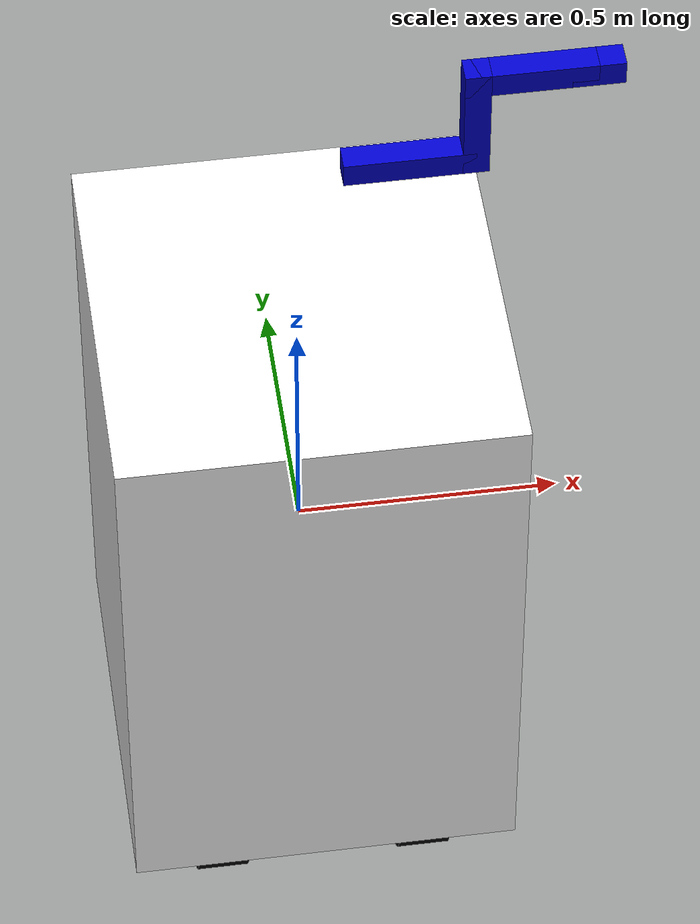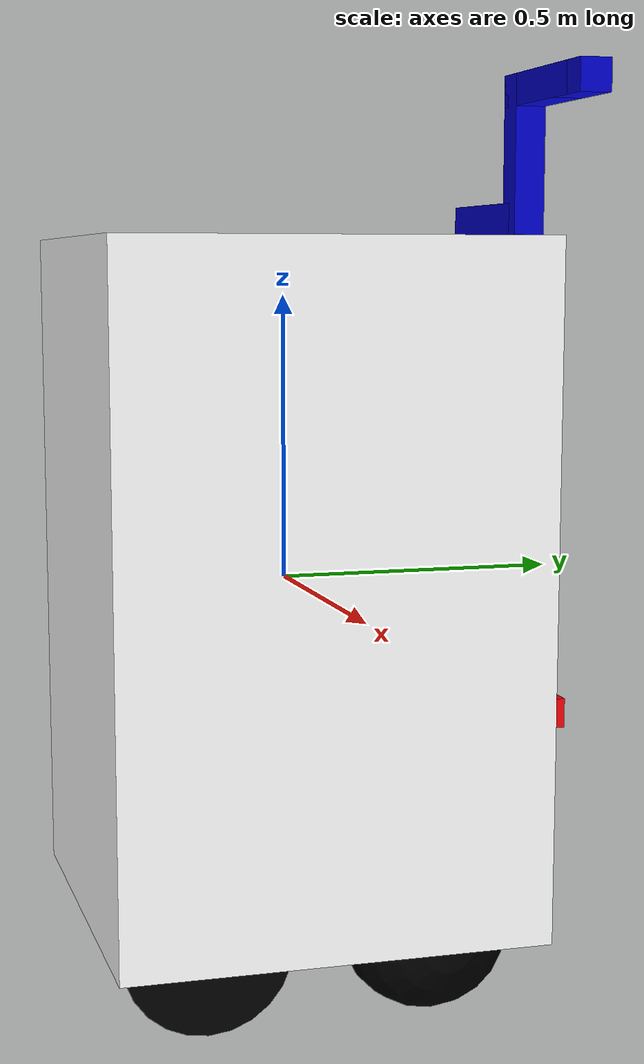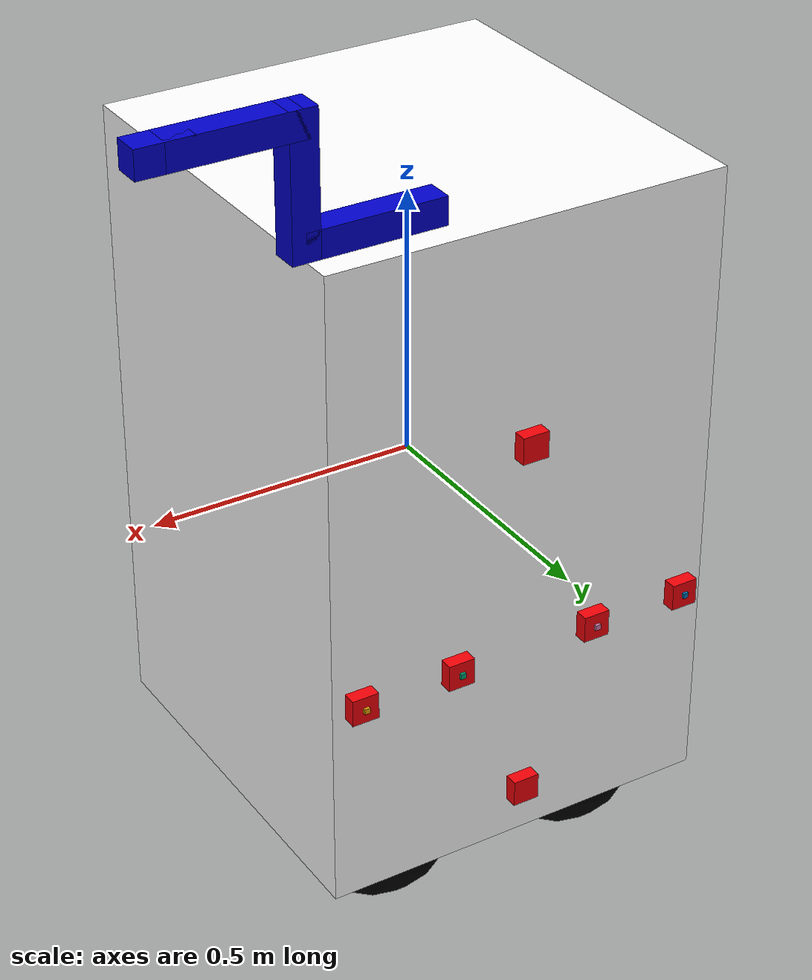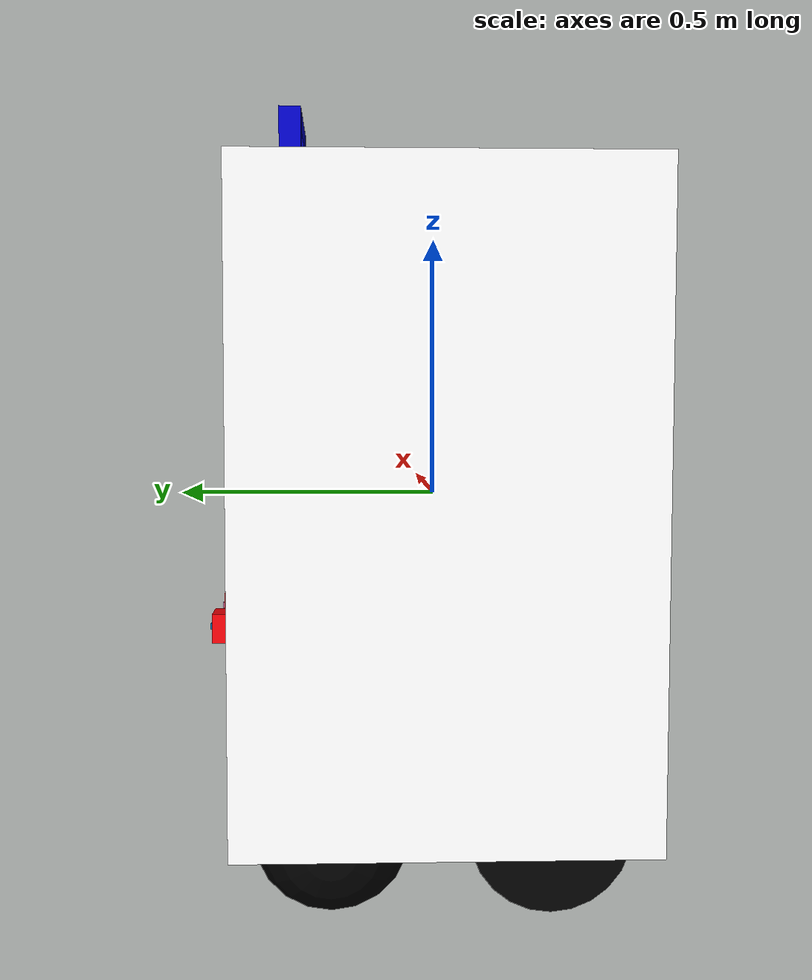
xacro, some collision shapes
<?xml version="1.0"?>
<robot name="poseidon"
    xmlns:xacro="http://ros.org/wiki/xacro">

    <!-- Material description for the robot -->
    <material name="black">
        <color rgba="0.0 0.0 0.0 1.0"/>
    </material>

    <material name="blue">
        <color rgba="0.0 0.0 0.8 1.0"/>
    </material>

    <material name="red">
        <color rgba="0.949, 0.007, 0.031, 1.0"/>
    </material>

    <material name="white">
        <color rgba="1.0 1.0 1.0 1.0"/>
    </material>

    <!-- Description for the robot base -->
    <xacro:property name="base_width" value="0.75" />
    <xacro:property name="base_depth" value="0.75" />
    <xacro:property name="base_height" value="1.2" />
    <xacro:property name="base_width_sqrd" value="${base_width*base_width}" />
    <xacro:property name="base_depth_sqrd" value="${base_depth*base_depth}" />
    <xacro:property name="base_height_sqrd" value="${base_height*base_height}" />

    <!-- Description for sensors -->
    <xacro:property name="camera_length" value="0.05" />
    <xacro:property name="imu_length" value="0.05" />
    <xacro:property name="sonar_sensor_length" value="0.05" />

    <!-- Description for the arm -->
    <xacro:property name="arm_generic_width" value="0.05" />
    <xacro:property name="arm_generic_depth" value="0.25" />
    <xacro:property name="arm_generic_height" value="0.05" />
    <xacro:property name="arm_end_width" value="0.05" />
    <xacro:property name="arm_end_depth" value="0.1" />
    <xacro:property name="arm_end_height" value="0.05" />
    <xacro:property name="arm_generic_width_sqrd" value="${arm_generic_width*arm_generic_width}" />
    <xacro:property name="arm_generic_depth_sqrd" value="${arm_generic_depth*arm_generic_depth}" />
    <xacro:property name="arm_generic_height_sqrd" value="${arm_generic_height*arm_generic_height}" />
    <xacro:property name="arm_end_width_sqrd" value="${arm_end_width*arm_end_width}" />
    <xacro:property name="arm_end_depth_sqrd" value="${arm_end_depth*arm_end_depth}" />
    <xacro:property name="arm_end_height_sqrd" value="${arm_end_height*arm_end_height}" />
    <xacro:property name="arm_generic_mass" value="0.1" />
    <xacro:property name="arm_end_mass" value="0.05" />

    <!-- Description for the wheel -->
    <xacro:property name="pi" value="3.1415" />
    <xacro:property name="wheel_radius" value="0.15" />
    <xacro:property name="wheel_length" value="0.1" />
    <xacro:property name="wheel_radius_sqrd" value="${wheel_radius*wheel_radius}" />
    <xacro:property name="wheel_length_sqrd" value="${wheel_length*wheel_length}" />
    <xacro:property name="wheel_front" value="0.2" />
    <xacro:property name="wheel_back" value="-0.2" />
    <xacro:property name="wheel_right" value="0.2" />
    <xacro:property name="wheel_left" value="-0.2" />
    <xacro:property name="wheel_mass" value="7" />

    <!-- Inertial macro description -->
    <xacro:macro name="cuboid_inertial" params="mass depth_sqrd width_sqrd height_sqrd">
        <inertial>
            <mass value="${mass}"/>
            <inertia ixx="${0.0833*mass*(width_sqrd+height_sqrd)}" ixy="0.0" ixz="0.0" iyy="${0.0833*mass*(depth_sqrd+height_sqrd)}" iyz="0.0" izz="${0.0833*mass*(width_sqrd+depth_sqrd)}" />
        </inertial>
    </xacro:macro>
    <xacro:macro name="cylinder_inertial" params="mass radius_sqrd length_sqrd">
        <inertial>
            <mass value="${mass}"/>
            <inertia ixx="${0.0833*mass*(3*radius_sqrd+length_sqrd)}" ixy="0.0" ixz="0.0" iyy="${0.0833*mass*(3*radius_sqrd+length_sqrd)}" iyz="0.0" izz="${0.5*mass*radius_sqrd}" />
        </inertial>
    </xacro:macro>
    <xacro:macro name="sphere_inertial" params="mass radius_sqrd">
        <inertial>
            <mass value="${mass}"/>
            <inertia ixx="${0.4*mass*radius_sqrd}" ixy="0.0" ixz="0.0" iyy="${0.4*mass*radius_sqrd}" iyz="0.0" izz="${0.4*mass*radius_sqrd}" />
        </inertial>
    </xacro:macro>

    <!-- Camera sensor macro description -->
    <xacro:macro name="camera_sensor" params="suffix origin_depth origin_width origin_height axis_x axis_y axis_z roll pitch yaw">
        <link name="camera_${suffix}_link">
            <inertial>
                <origin xyz="0.0 0.0 0.0" rpy="0.0 0.0 0.0"/>
                <mass value="1e-5"/>
                <inertia ixx="1e-6" ixy="0.0" ixz="0.0" iyy="1e-6" iyz="0.0" izz="1e-6"/>
            </inertial>
            <visual>
                <origin xyz="0.0 0.0 0.0" rpy="0.0 0.0 0.0"/>
                <geometry>
                    <box size="${camera_length} ${camera_length} ${camera_length}"/>
                </geometry>
                <material name="red"/>
            </visual>
            <collision>
                <origin xyz="0.0 0.0 0.0" rpy="0.0 0.0 0.0"/>
                <geometry>
                    <box size="${camera_length} ${camera_length} ${camera_length}"/>
                </geometry>
            </collision>
        </link>

        <joint name="camera_${suffix}_joint" type="fixed">
            <origin xyz="${origin_depth} ${origin_width} ${origin_height}" rpy="${roll} ${pitch} ${yaw}"/>
            <parent link="base_link"/>
            <child link="camera_${suffix}_link"/>
            <axis xyz="${axis_x} ${axis_y} ${axis_z}"/>
        </joint>
    </xacro:macro>

    <!-- Sonar sensor macro description -->
    <xacro:macro name="sonar_base_link" params="suffix origin_depth origin_width origin_height axis_x axis_y axis_z roll pitch yaw">
        <link name="sonar_base_${suffix}_link">
            <inertial>
                <origin xyz="0.0 0.0 0.0" rpy="0.0 0.0 0.0"/>
                <mass value="1e-5"/>
                <inertia ixx="1e-6" ixy="0.0" ixz="0.0" iyy="1e-6" iyz="0.0" izz="1e-6"/>
            </inertial>
            <visual>
                <origin xyz="0.0 0.0 0.0" rpy="0.0 0.0 0.0"/>
                <geometry>
                    <box size="${sonar_sensor_length} ${sonar_sensor_length} ${sonar_sensor_length}"/>
                </geometry>
                <material name="red"/>
            </visual>
            <collision>
                <origin xyz="0.0 0.0 0.0" rpy="0.0 0.0 0.0"/>
                <geometry>
                    <box size="${sonar_sensor_length} ${sonar_sensor_length} ${sonar_sensor_length}"/>
                </geometry>
            </collision>
        </link>

        <joint name="sonar_base_${suffix}_joint" type="fixed">
            <origin xyz="${origin_depth} ${origin_width} ${origin_height}" rpy="${roll} ${pitch} ${yaw}"/>
            <parent link="base_link"/>
            <child link="sonar_base_${suffix}_link"/>
            <axis xyz="${axis_x} ${axis_y} ${axis_z}"/>
        </joint>
    </xacro:macro>

    <!-- Hector sonar sensor -->
    <xacro:macro name="sonar_sensor" params="name parent *origin ros_topic update_rate min_range max_range field_of_view ray_count">
        <joint name="${name}_joint" type="fixed">
            <xacro:insert_block name="origin" />
            <parent link="${parent}"/>
            <child link="${name}_link"/>
        </joint>

        <link name="${name}_link">
            <inertial>
                <mass value="0.001" />
                <origin xyz="0 0 0" rpy="0 0 0" />
                <inertia ixx="0.000000017" ixy="0" ixz="0" iyy="0.000000017" iyz="0" izz="0.000000017" />
            </inertial>
            <visual>
                <origin xyz="0 0 0" rpy="0 0 0" />
                <geometry>
                    <mesh filename="package://hector_sensors_description/meshes/sonar_sensor/max_sonar_ez4.dae"/>
                </geometry>
            </visual>
            <collision>
                <origin xyz="0 0 0" rpy="0 0 0" />
                <geometry>
                    <box size="0.01 0.01 0.01" />
                </geometry>
            </collision>
        </link>

        <gazebo reference="${name}_link">
            <sensor type="ray" name="${name}">
                <always_on>true</always_on>
                <update_rate>${update_rate}</update_rate>
                <pose>0 0 0 0 0 0</pose>
                <visualize>false</visualize>
                <ray>
                    <scan>
                        <horizontal>
                            <samples>${ray_count}</samples>
                            <resolution>1</resolution>
                            <min_angle>-${field_of_view/2}</min_angle>
                            <max_angle> ${field_of_view/2}</max_angle>
                        </horizontal>
                        <vertical>
                            <samples>${ray_count}</samples>
                            <resolution>1</resolution>
                            <min_angle>-${field_of_view/2}</min_angle>
                            <max_angle> ${field_of_view/2}</max_angle>
                        </vertical>
                    </scan>
                    <range>
                        <min>${min_range}</min>
                        <max>${max_range}</max>
                        <resolution>0.01</resolution>
                    </range>
                </ray>

                <plugin name="gazebo_ros_${name}_controller" filename="libhector_gazebo_ros_sonar.so">
                    <gaussianNoise>0.005</gaussianNoise>
                    <topicName>${ros_topic}</topicName>
                    <frameId>${name}_link</frameId>
                </plugin>
            </sensor>
        </gazebo>
    </xacro:macro>

    <!-- Robot wheel macro description -->
    <xacro:macro name="wheel_motor" params="prefix end side">
        <link name="${prefix}_wheel_motor">
            <xacro:cylinder_inertial mass="${wheel_mass}" radius_sqrd="${wheel_radius_sqrd}" length_sqrd="${wheel_length_sqrd}"/>
            <visual>
                <geometry>
                    <cylinder length="${wheel_length}" radius="${wheel_radius}"/>
                </geometry>
                <material name="black"/>
                <origin xyz="0 0 0" rpy="0.0 ${pi/2} 0.0"/>
            </visual>
            <collision>
                <geometry>
                    <cylinder length="${wheel_length}" radius="${wheel_radius}"/>
                </geometry>
                <origin xyz="0 0 0" rpy="0.0 ${pi/2} 0.0"/>
            </collision>
        </link>

        <joint name="${prefix}_wheel_motor_joint" type="continuous">
            <parent link="base_link"/>
            <child link="${prefix}_wheel_motor"/>
            <origin xyz="${side} ${end} -0.6"/>
            <axis xyz="-1.0 0.0 0.0"/>
        </joint>

        <transmission name="${prefix}_wheel_motor_trans">
            <type>transmission_interface/SimpleTransmission</type>
            <actuator name="${prefix}_wheel_actuator">
                <mechanicalReduction>1</mechanicalReduction>
            </actuator>
            <joint name="${prefix}_wheel_motor_joint">
                <hardwareInterface>VelocityJointInterface</hardwareInterface>
            </joint>
        </transmission>

        <gazebo reference="${prefix}_wheel_motor">
            <mu1 value="200"/>
            <mu2 value="100"/>
            <kp value="10000000.0"/>
            <kd value="1.0"/>
            <material>Gazebo/Grey</material>
        </gazebo>
    </xacro:macro>

    <xacro:macro name="wheel_caster" params="prefix end side">
        <link name="${prefix}_wheel_caster">
            <xacro:sphere_inertial mass="${wheel_mass}" radius_sqrd="${wheel_radius_sqrd}"/>
            <visual>
                <origin xyz="0 0 0" rpy="0.0 ${pi/2} 0.0"/>
                <geometry>
                    <sphere radius="${wheel_radius}"/>
                </geometry>
                <material name="black"/>
            </visual>
            <collision>
                <origin xyz="0 0 0" rpy="0.0 ${pi/2} 0.0"/>
                <geometry>
                    <sphere radius="${wheel_radius}"/>
                </geometry>
            </collision>
        </link>

        <joint name="${prefix}_wheel_caster_joint" type="fixed">
            <parent link="base_link"/>
            <child link="${prefix}_wheel_caster"/>
            <origin xyz="${side} ${end} -0.6"/>
        </joint>

        <gazebo reference="${prefix}_wheel_caster">
            <mu1 value="0.0"/>
            <mu2 value="0.0"/>
            <kp value="10000000.0"/>
            <kd value="1.0"/>
            <material>Gazebo/White</material>
        </gazebo>
    </xacro:macro>

    <!-- Link description for the robot base -->
    <link name="base_link">
        <inertial>
            <mass value="400"/>
            <inertia ixx="66.75" ixy="0.0" ixz="0.0" iyy="37.5" iyz="0.0" izz="66.75"/>
        </inertial>
        <visual>
            <geometry>
                <box size="${base_depth} ${base_width} ${base_height}"/>
            </geometry>
            <material name="white"/>
        </visual>
        <collision>
            <geometry>
                <box size="${base_depth} ${base_width} ${base_height}"/>
            </geometry>
        </collision>
    </link>

    <!-- Sensor description attached to the robot base -->
    <!-- Camera Sensors -->
    <xacro:camera_sensor suffix="centre" origin_depth="0.0" origin_width="${base_width/2}" origin_height="0.2" axis_x="0.0" axis_y="1.0" axis_z="0.0" roll="0.0" pitch="0.0" yaw="0.0" />
    <xacro:camera_sensor suffix="qr" origin_depth="0.0" origin_width="${base_width/2}" origin_height="${-base_height/2+0.1}" axis_x="0.0" axis_y="1.0" axis_z="0.0" roll="0.0" pitch="0.0" yaw="${pi/2}" />

    <!-- Range sensors -->
    <xacro:sonar_base_link suffix="left_outer" origin_depth="${-base_depth/2+0.05}" origin_width="${base_width/2}" origin_height="-0.2" axis_x="0.0" axis_y="1.0" axis_z="0.0" roll="0.0" pitch="0.0" yaw="0.0" />
    <xacro:sonar_sensor name="sonar_left_outer_sensor" parent="sonar_base_left_outer_link" ros_topic="/psi/sensors/range/left_outer" update_rate="1" min_range="" max_range="" field_of_view="0.0174533" ray_count="1">
        <origin xyz="0 0.025 0" rpy="0 0 0"/>
    </xacro:sonar_sensor>
    <xacro:sonar_base_link suffix="left_inner" origin_depth="${-base_depth/4+0.05}" origin_width="${base_width/2}" origin_height="-0.2" axis_x="0.0" axis_y="1.0" axis_z="0.0" roll="0.0" pitch="0.0" yaw="0.0" />
    <xacro:sonar_sensor name="sonar_left_inner_sensor" parent="sonar_base_left_inner_link" ros_topic="/psi/sensors/range/left_inner" update_rate="1" min_range="" max_range="" field_of_view="0.0174533" ray_count="1">
        <origin xyz="0 0.025 0" rpy="0 0 0"/>
    </xacro:sonar_sensor>
    <xacro:sonar_base_link suffix="right_outer" origin_depth="${base_depth/2-0.05}" origin_width="${base_width/2}" origin_height="-0.2" axis_x="0.0" axis_y="1.0" axis_z="0.0" roll="0.0" pitch="0.0" yaw="0.0" />
    <xacro:sonar_sensor name="sonar_right_outer_sensor" parent="sonar_base_right_outer_link" ros_topic="/psi/sensors/range/right_outer" update_rate="1" min_range="" max_range="" field_of_view="0.0174533" ray_count="1">
        <origin xyz="0 0.025 0" rpy="0 0 0"/>
    </xacro:sonar_sensor>
    <xacro:sonar_base_link suffix="right_inner" origin_depth="${base_depth/4-0.05}" origin_width="${base_width/2}" origin_height="-0.2" axis_x="0.0" axis_y="1.0" axis_z="0.0" roll="0.0" pitch="0.0" yaw="0.0" />
    <xacro:sonar_sensor name="sonar_right_inner_sensor" parent="sonar_base_right_inner_link" ros_topic="/psi/sensors/range/right_inner" update_rate="1" min_range="" max_range="" field_of_view="0.0174533" ray_count="1">
        <origin xyz="0 0.025 0" rpy="0 0 0"/>
    </xacro:sonar_sensor>

    <!-- IMU Sensor -->
    <link name="imu_link">
        <inertial>
            <origin xyz="0.0 0.0 0.0" rpy="0.0 0.0 0.0"/>
            <mass value="1e-5"/>
            <inertia ixx="0.0" ixy="0.0" ixz="0.0" iyy="0.0" iyz="0.0" izz="0.0"/>
        </inertial>
        <visual name="">
            <origin xyz="0.0 0.0 0.0" rpy="0.0 0.0 0.0"/>
            <geometry>
                <box size="${imu_length} ${imu_length} ${imu_length}"/>
            </geometry>
            <material name="red"/>
        </visual>
        <collision>
            <origin xyz="0.0 0.0 0.0" rpy="0.0 0.0 0.0"/>
            <geometry>
                <box size="${imu_length} ${imu_length} ${imu_length}"/>
            </geometry>
        </collision>
    </link>

    <joint name="imu_joint" type="fixed">
        <origin xyz="0.0 0.0 ${-base_height/2+0.01}" rpy="0.0 0.0 0.0"/>
        <parent link="base_link"/>
        <child link="imu_link"/>
        <axis xyz="0.0 0.0 0.0"/>
    </joint>

    <!-- Link description for the robot arm -->
    <link name="left_arm_base">
        <xacro:cuboid_inertial mass="${arm_generic_mass}" depth_sqrd="${arm_generic_depth_sqrd}" width_sqrd="${arm_generic_width_sqrd}" height_sqrd="${arm_generic_height_sqrd}" />
        <visual>
            <origin xyz="0.0 0.0 0.0"/>
            <geometry>
                <box size="${arm_generic_depth} ${arm_generic_width} ${arm_generic_height}"/>
            </geometry>
            <material name="blue"/>
        </visual>
        <collision>
            <origin xyz="0.0 0.0 0.0"/>
            <geometry>
                <box size="${arm_generic_depth} ${arm_generic_width} ${arm_generic_height}"/>
            </geometry>
        </collision>
    </link>

    <joint name="left_arm_base_joint" type="fixed">
        <parent link="base_link"/>
        <child link="left_arm_base"/>
        <origin xyz="0.25 0.3 0.625"/>
    </joint>

    <link name="left_arm_lower">
        <xacro:cuboid_inertial mass="${arm_generic_mass}" depth_sqrd="${arm_generic_depth_sqrd}" width_sqrd="${arm_generic_width_sqrd}" height_sqrd="${arm_generic_height_sqrd}" />
        <visual name="">
            <origin xyz="0.0 0.0 0.1" rpy="0.0 ${pi/2} 0.0"/>
            <geometry>
                <box size="${arm_generic_depth} ${arm_generic_width} ${arm_generic_height}"/>
            </geometry>
            <material name="blue"/>
        </visual>
        <collision>
            <origin xyz="0.0 0.0 0.1" rpy="0.0 ${pi/2} 0.0"/>
            <geometry>
                <box size="${arm_generic_depth} ${arm_generic_width} ${arm_generic_height}"/>
            </geometry>
        </collision>
    </link>

    <joint name="left_arm_lower_joint" type="revolute">
        <origin xyz="0.125 0.0 0.0" rpy="0.0 0.0 0.0"/>
        <parent link="left_arm_base"/>
        <child link="left_arm_lower"/>
        <axis xyz="0.0 1.0 0.0"/>
        <limit lower="0.0" upper="1.33" effort="1000.0" velocity="0.5"/>
    </joint>

    <link name="left_arm_mid">
        <xacro:cuboid_inertial mass="${arm_generic_mass}" depth_sqrd="${arm_generic_depth_sqrd}" width_sqrd="${arm_generic_width_sqrd}" height_sqrd="${arm_generic_height_sqrd}" />
        <visual name="">
            <origin xyz="0.1 0.0 0.0" rpy="0.0 0.0 0.0"/>
            <geometry>
                <box size="${arm_generic_depth} ${arm_generic_width} ${arm_generic_height}"/>
            </geometry>
            <material name="blue"/>
        </visual>
        <collision>
            <origin xyz="0.1 0.0 0.0" rpy="0.0 0.0 0.0"/>
            <geometry>
                <box size="${arm_generic_depth} ${arm_generic_width} ${arm_generic_height}"/>
            </geometry>
        </collision>
    </link>

    <joint name="left_arm_mid_joint" type="revolute">
        <origin xyz="0.0 0.0 0.2" rpy="0.0 0.0 0.0"/>
        <parent link="left_arm_lower"/>
        <child link="left_arm_mid"/>
        <axis xyz="0.0 -1.0 0.0"/>
        <limit lower="-1.0" upper="1.5" effort="1000.0" velocity="0.5"/>
    </joint>

    <link name="left_arm_end">
        <xacro:cuboid_inertial mass="${arm_end_mass}" depth_sqrd="${arm_end_depth_sqrd}" width_sqrd="${arm_end_width_sqrd}" height_sqrd="${arm_end_height_sqrd}" />
        <visual name="">
            <origin xyz="0.025 0.0 0.0" rpy="0.0 0.0 0.0"/>
            <geometry>
                <box size="${arm_end_depth} ${arm_end_width} ${arm_end_height}"/>
            </geometry>
            <material name="blue"/>
        </visual>
        <collision>
            <origin xyz="0.0 0.0 0.0" rpy="0.0 0.0 0.0"/>
            <geometry>
                <box size="${arm_end_depth} ${arm_end_width} ${arm_end_height}"/>
            </geometry>
        </collision>
    </link>

    <joint name="left_arm_end_joint" type="revolute">
        <origin xyz="0.2 0.0 0.0" rpy="0.0 0.0 0.0"/>
        <parent link="left_arm_mid"/>
        <child link="left_arm_end"/>
        <axis xyz="0.0 -1.0 0.0"/>
        <limit lower="0.0" upper="1.1" effort="1000.0" velocity="0.5"/>
    </joint>

    <!-- Link description for the robot wheels -->
    <xacro:wheel_motor prefix="right" end="${wheel_back}" side="${wheel_right}" />
    <xacro:wheel_motor prefix="left" end="${wheel_back}" side="${wheel_left}" />
    <xacro:wheel_caster prefix="right" end="${wheel_front}" side="${wheel_right}" />
    <xacro:wheel_caster prefix="left" end="${wheel_front}" side="${wheel_left}" />

    <!-- Gazebo plugin for ROS Control -->
    <gazebo>
        <plugin name="gazebo_ros_control" filename="libgazebo_ros_control.so">
            <robotNamespace>/</robotNamespace>
        </plugin>
    </gazebo>
    <gazebo reference="camera_centre_link">
        <sensor type="camera" name="camera_centre">
            <update_rate>30.0</update_rate>
            <camera name="centre">
                <horizontal_fov>1.3962634</horizontal_fov>
                <image>
                    <width>800</width>
                    <height>800</height>
                    <format>R8G8B8</format>
                </image>
                <clip>
                    <near>0.02</near>
                    <far>300</far>
                </clip>
                <noise>
                    <type>gaussian</type>
                    <!-- Noise is sampled independently per pixel on each frame.
               That pixel's noise value is added to each of its color
               channels, which at that point lie in the range [0,1]. -->
                    <mean>0.0</mean>
                    <stddev>0.007</stddev>
                </noise>
            </camera>
            <plugin name="camera_controller" filename="libgazebo_ros_camera.so">
                <alwaysOn>true</alwaysOn>
                <updateRate>0.0</updateRate>
                <cameraName>psi/camera_centre</cameraName>
                <imageTopicName>image_raw</imageTopicName>
                <cameraInfoTopicName>camera_info</cameraInfoTopicName>
                <frameName>camera_centre_link</frameName>
                <hackBaseline>0.07</hackBaseline>
                <distortionK1>0.0</distortionK1>
                <distortionK2>0.0</distortionK2>
                <distortionK3>0.0</distortionK3>
                <distortionT1>0.0</distortionT1>
                <distortionT2>0.0</distortionT2>
            </plugin>
        </sensor>
    </gazebo>
    <gazebo reference="camera_qr_link">
        <sensor type="camera" name="camera_qr">
            <update_rate>30.0</update_rate>
            <camera name="centre">
                <horizontal_fov>1.3962634</horizontal_fov>
                <image>
                    <width>800</width>
                    <height>800</height>
                    <format>R8G8B8</format>
                </image>
                <clip>
                    <near>0.02</near>
                    <far>300</far>
                </clip>
                <noise>
                    <type>gaussian</type>
                    <!-- Noise is sampled independently per pixel on each frame.
               That pixel's noise value is added to each of its color
               channels, which at that point lie in the range [0,1]. -->
                    <mean>0.0</mean>
                    <stddev>0.007</stddev>
                </noise>
            </camera>
            <plugin name="camera_controller" filename="libgazebo_ros_camera.so">
                <alwaysOn>true</alwaysOn>
                <updateRate>0.0</updateRate>
                <cameraName>psi/camera_qr</cameraName>
                <imageTopicName>image_raw</imageTopicName>
                <cameraInfoTopicName>camera_info</cameraInfoTopicName>
                <frameName>camera_qr_link</frameName>
                <hackBaseline>0.07</hackBaseline>
                <distortionK1>0.0</distortionK1>
                <distortionK2>0.0</distortionK2>
                <distortionK3>0.0</distortionK3>
                <distortionT1>0.0</distortionT1>
                <distortionT2>0.0</distortionT2>
            </plugin>
        </sensor>
    </gazebo>
    <gazebo reference="imu_link">
        <gravity>true</gravity>
        <sensor name="imu_sensor" type="imu">
            <always_on>true</always_on>
            <update_rate>100</update_rate>
            <visualize>true</visualize>
            <topic>__default_topic__</topic>
            <plugin filename="libgazebo_ros_imu_sensor.so" name="imu_plugin">
                <topicName>psi/imu</topicName>
                <bodyName>imu_link</bodyName>
                <updateRateHZ>10.0</updateRateHZ>
                <gaussianNoise>0.0</gaussianNoise>
                <xyzOffset>0 0 0</xyzOffset>
                <rpyOffset>0 0 0</rpyOffset>
                <frameName>imu_link</frameName>
            </plugin>
            <pose>0 0 0 0 0 0</pose>
        </sensor>
    </gazebo>
</robot>
